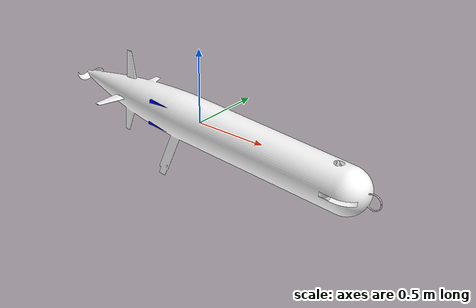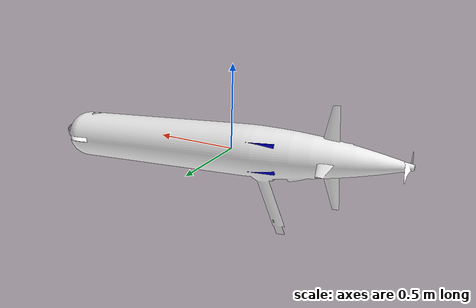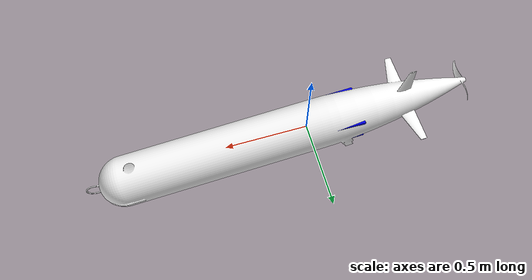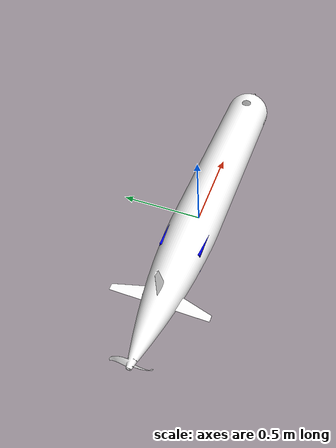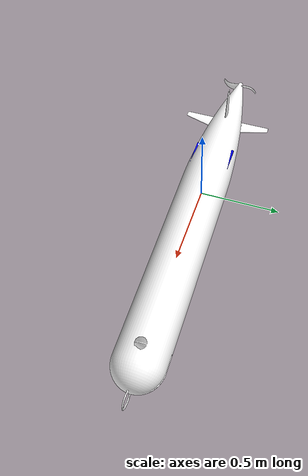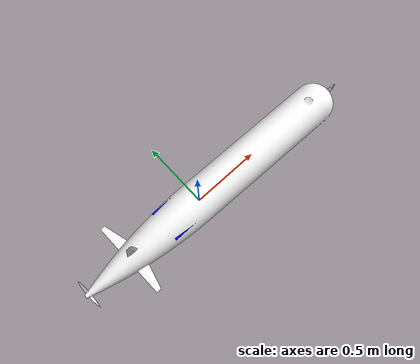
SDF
<?xml version="1.0" ?>
<!--
  Development of this module has been funded by the Monterey Bay Aquarium
  Research Institute (MBARI) and the David and Lucile Packard Foundation
-->
<sdf version="1.6">
  <world name="tilted_world">
    <gravity>0 0 -9.8</gravity>
    <scene>
      <!-- For turquoise ambient to match particle effect -->
      <ambient>0.0 1.0 1.0</ambient>
      <!-- For default gray ambient -->
      <background>0.0 0.7 0.8</background>
    </scene>

    <physics name="1ms" type="dart">
      <max_step_size>0.02</max_step_size>
      <real_time_factor>1</real_time_factor>
    </physics>
    <plugin
      filename="ignition-gazebo-physics-system"
      name="ignition::gazebo::systems::Physics">
    </plugin>
    <plugin
      filename="ignition-gazebo-user-commands-system"
      name="ignition::gazebo::systems::UserCommands">
    </plugin>
    <plugin
      filename="ignition-gazebo-scene-broadcaster-system"
      name="ignition::gazebo::systems::SceneBroadcaster">
    </plugin>

    <plugin
      filename="ignition-gazebo-buoyancy-system"
      name="ignition::gazebo::systems::Buoyancy">
      <!-- TODO: fix behaviour near surface, see https://github.com/osrf/lrauv/issues/102 -->
      <uniform_fluid_density>1025</uniform_fluid_density>
    </plugin>

    <include>
      <pose>0 0 0 0 0.08 0</pose>
      <uri>tethys</uri>
      <plugin
        filename="ignition-gazebo-detachable-joint-system"
        name="ignition::gazebo::systems::DetachableJoint">
        <parent_link>base_link</parent_link>
        <child_model>__model__</child_model>
        <child_link>drop_weight</child_link>
        <topic>/model/tethys/drop_weight</topic>
      </plugin>
      <plugin
        filename="ignition-gazebo-joint-position-controller-system"
        name="ignition::gazebo::systems::JointPositionController">
        <joint_name>battery_joint</joint_name>
        <use_velocity_commands>true</use_velocity_commands>
        <cmd_max>0.0007</cmd_max>
      </plugin>
    </include>

  </world>
</sdf>

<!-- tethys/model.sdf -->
<!--
  Development of this module has been funded by the Monterey Bay Aquarium
  Research Institute (MBARI) and the David and Lucile Packard Foundation
-->
<sdf version="1.6">
  <model name="tethys">
    <!-- Body -->
    <link name="base_link">
      <inertial>
        <!-- to offset battery CoM before getting real parameters for vehicle without battery -->
        <!-- 146.5671 subtracted by battery mass -->
        <mass>114.8364</mass>
        <!-- TODO: Get inertial matrix of base link WITHOUT battery -->
        <inertia>

          <!-- Guesstimated (decreased by 1/5) to account for battery -->
          <ixx>2.4</ixx>
          <ixy>0</ixy>
          <ixz>0.0004</ixz>
          <iyy>33.5841864</iyy>
          <iyz>0</iyz>
          <izz>33.5841864</izz>

        </inertia>
      </inertial>

      <collision name="main_body_buoyancy">
        <pose>0 0 0.007 0 0 0</pose>
        <geometry>
          <box>
            <size>2 0.3 0.245945166667</size>
          </box>
        </geometry>
      </collision>

      <visual name="visual">
        <geometry>
          <mesh>
            <uri>meshes/tethys.dae</uri>
            <submesh>
              <name>Body</name>
              <center>false</center>
            </submesh>
          </mesh>
        </geometry>
        <material>
          <diffuse>1.0 1.0 1.0 1.0</diffuse>
          <specular>1.0 1.0 1.0 1.0</specular>
          <pbr>
            <metal>
              <albedo_map>materials/textures/Tethys_Albedo.png</albedo_map>
              <normal_map>materials/textures/Tethys_Normal.png</normal_map>
              <metalness_map>materials/textures/Tethys_Metalness.png</metalness_map>
              <roughness_map>materials/textures/Tethys_Roughness.png</roughness_map>
            </metal>
          </pbr>
          <script>
            <uri>materials/scripts/</uri>
            <uri>materials/textures/</uri>
            <name>tethys/Tethys_Diffuse</name>
          </script>
        </material>
      </visual>
    </link>

    <!-- Horizontal fins -->
    <link name="horizontal_fins">
      <pose>1.05 0 0 0 0 0</pose>
      <inertial>
        <pose>0 0 0 1.57 0 0.5</pose>
        <mass>0.2</mass>
        <inertia>
          <ixx>0.0007924568755</ixx>
          <ixy>-0.0000000002674</ixy>
          <ixz>0.0003978158176</ixz>
          <iyy>0.0010546736475</iyy>
          <iyz>-0.0000000006729</iyz>
          <izz>0.0002633558262</izz>
        </inertia>
      </inertial>

      <collision name="collision">
        <geometry>
          <box>
            <size>0.1 0.1 0.02</size>
          </box>
        </geometry>
      </collision>

      <visual name= "visual">
        <pose>-1.05 0 0 0 0 0</pose>
        <geometry>
          <mesh>
            <uri>meshes/tethys.dae</uri>
            <submesh>
              <name>Fins_Horizontal</name>
              <center>false</center>
            </submesh>
          </mesh>
        </geometry>
        <material>
          <diffuse>1.0 1.0 1.0</diffuse>
          <specular>1.0 1.0 1.0</specular>
          <pbr>
            <metal>
              <albedo_map>materials/textures/Tethys_Albedo.png</albedo_map>
              <normal_map>materials/textures/Tethys_Normal.png</normal_map>
              <metalness_map>materials/textures/Tethys_Metalness.png</metalness_map>
              <roughness_map>materials/textures/Tethys_Roughness.png</roughness_map>
            </metal>
          </pbr>
          <script>
            <uri>materials/scripts/</uri>
            <uri>materials/textures/</uri>
            <name>tethys/Tethys_Diffuse</name>
          </script>
        </material>
      </visual>
    </link>

    <!-- Vertical fins -->
    <link name="vertical_fins">
      <pose>1.05 0 0 0 0 0</pose>
      <inertial>
        <mass>0.2</mass>
        <inertia>
          <ixx>0.0007924568755</ixx>
          <ixy>-0.0000000002674</ixy>
          <ixz>0.0003978158176</ixz>
          <iyy>0.0010546736475</iyy>
          <iyz>-0.0000000006729</iyz>
          <izz>0.0002633558262</izz>
        </inertia>
      </inertial>

      <collision name="collision">
         <geometry>
          <box>
            <size>0.1 0.1 0.02</size>
          </box>
        </geometry>
      </collision>

      <visual name= "visual">
        <pose>-1.05 0 0 0 0 0</pose>
        <geometry>
          <mesh>
            <uri>meshes/tethys.dae</uri>
            <submesh>
              <name>Fins_vertical</name>
              <center>false</center>
            </submesh>
          </mesh>
        </geometry>
        <material>
          <diffuse>1.0 1.0 1.0</diffuse>
          <specular>1.0 1.0 1.0</specular>
          <pbr>
            <metal>
              <albedo_map>materials/textures/Tethys_Albedo.png</albedo_map>
              <normal_map>materials/textures/Tethys_Normal.png</normal_map>
              <metalness_map>materials/textures/Tethys_Metalness.png</metalness_map>
              <roughness_map>materials/textures/Tethys_Roughness.png</roughness_map>
            </metal>
          </pbr>
          <script>
            <uri>materials/scripts/</uri>
            <uri>materials/textures/</uri>
            <name>tethys/Tethys_Diffuse</name>
          </script>
        </material>
      </visual>
    </link>

    <!-- Propeller -->
    <link name="propeller">
      <pose>1.43162 0 0 0 0 0</pose>
      <inertial>
        <pose>0 0 0 1.570796 0 0</pose>
        <mass>0.09</mass>
        <inertia>
          <ixx>0.000143971303</ixx>
          <ixy>0.000000000008</ixy>
          <ixz>-0.000000000224</ixz>
          <iyy>0.000140915448</iyy>
          <iyz>-0.000025236433</iyz>
          <izz>0.000033571862</izz>
        </inertia>
      </inertial>

      <collision name="collision">
        <geometry>
          <box>
            <size>0.03 0.1 0.03</size>
          </box>
        </geometry>
      </collision>

      <visual name= "visual">
        <pose>-1.43162 0 0 0 0 0</pose>
        <geometry>
          <mesh>
            <uri>meshes/tethys.dae</uri>
            <submesh>
              <name>Prop</name>
              <center>false</center>
            </submesh>
          </mesh>
        </geometry>
        <material>
          <diffuse>1.0 1.0 1.0</diffuse>
          <specular>1.0 1.0 1.0</specular>
          <pbr>
            <metal>
              <albedo_map>materials/textures/Tethys_Albedo.png</albedo_map>
              <normal_map>materials/textures/Tethys_Normal.png</normal_map>
              <metalness_map>materials/textures/Tethys_Metalness.png</metalness_map>
              <roughness_map>materials/textures/Tethys_Roughness.png</roughness_map>
            </metal>
          </pbr>
          <script>
            <uri>materials/scripts/</uri>
            <uri>materials/textures/</uri>
            <name>tethys/Tethys_Diffuse</name>
          </script>
        </material>
      </visual>
    </link>

    <!-- Battery -->
    <!-- No separate collision for battery, because it is inside the vehicle.
         Additional collision requires buoyancy volume recalculation. -->
    <link name="battery">
      <!-- TODO: On hold till mesh center adjusted to aft dome, then it will be 0.563, 0, 0.024. -->
      <pose>0 0 0 0 0 0</pose>
      <inertial>
        <!-- Non-zero y creates roll. Not fun to tune without actual base link inertia minus battery-->
        <mass>31.7307</mass>
        <inertia>
          <ixx>0.2327</ixx>
          <ixy>0</ixy>
          <ixz>-0.0004</ixz>
          <iyy>1.0930</iyy>
          <iyz>0</iyz>
          <izz>1.0344</izz>
        </inertia>
      </inertial>

      <visual name= "visual">
        <geometry>
          <box>
            <!-- z is guesstimated from schematics. Visual doesn't matter. -->
            <size>0.6489446 0.24638 0.17415</size>
          </box>
        </geometry>
        <material>
          <diffuse>0.0 0.0 1.0 1.0</diffuse>
          <specular>0.0 0.0 1.0 1.0</specular>
        </material>
      </visual>
    </link>

    <link name="buoyancy_engine">
      <!-- TODO: Determine location of buoyancy engine -->
      <pose>0.4 0 0 0 0 0</pose>

      <inertial>
        <pose>0 0 0 0 0 0</pose>
        <mass>0.3</mass>
        <inertia>
          <ixx>0.000143971303</ixx>
          <ixy>0.000000000008</ixy>
          <ixz>-0.000000000224</ixz>
          <iyy>0.000140915448</iyy>
          <iyz>-0.000025236433</iyz>
          <izz>0.000033571862</izz>
        </inertia>
      </inertial>
      <collision name="collision">
        <geometry>
          <box>
            <size>0.03 0.1 0.1</size>
          </box>
        </geometry>
      </collision>
    </link>

    <!-- Joints -->
    <joint name="buoyancy_engine_joint" type="fixed">
      <pose>0 0 0 0 0 0</pose>
      <parent>base_link</parent>
      <child>buoyancy_engine</child>
      <namespace>tethys</namespace>
    </joint>
    <joint name="horizontal_fins_joint" type="revolute">
      <pose>0 0 0 0 0 0</pose>
      <parent>base_link</parent>
      <child>horizontal_fins</child>
      <axis>
        <xyz>0 1 0</xyz>
        <limit>
          <lower>-0.261799</lower>
          <upper>0.261799</upper>
          <effort>-1</effort>
          <velocity>-1</velocity>
        </limit>
      </axis>
    </joint>

    <joint name="vertical_fins_joint" type="revolute">
      <pose degrees="true">0 0 0   180 0 0</pose>
      <parent>base_link</parent>
      <child>vertical_fins</child>
      <axis>
        <xyz>0 0 1</xyz>
        <limit>
          <lower>-0.261799</lower>
          <upper>0.261799</upper>
          <effort>-1</effort>
          <velocity>-1</velocity>
        </limit>
      </axis>
    </joint>

    <joint name="propeller_joint" type="revolute">
      <pose degrees="true">0 0 0   0 180 0</pose>
      <parent>base_link</parent>
      <child>propeller</child>
      <axis>
        <xyz>1 0 0</xyz>
        <limit>
          <lower>-1e+12</lower>
          <upper>1e+12</upper>
          <effort>1e6</effort>
          <velocity>-1</velocity>
        </limit>
      </axis>
    </joint>

    <!-- positive joint values move mass forward -->
    <joint name="battery_joint" type="prismatic">
      <pose degrees="true">0 0 0   0 0 180</pose>
      <parent>base_link</parent>
      <child>battery</child>
      <axis>
        <xyz>1 0 0</xyz>
        <limit>
          <lower>-0.03</lower>
          <upper>0.03</upper>
          <effort>1e6</effort>
          <velocity>0.0007</velocity>
        </limit>
      </axis>
    </joint>

    <!-- Drop weight -->
    <link name="drop_weight">
      <pose>0 0 0 0 0 0</pose>
      <inertial>
        <pose>0 0 0 0 0 0</pose>
        <mass>1</mass>
        <inertia>
          <ixx>0.000143971303</ixx>
          <ixy>0.000000000008</ixy>
          <ixz>-0.000000000224</ixz>
          <iyy>0.000140915448</iyy>
          <iyz>-0.000025236433</iyz>
          <izz>0.000033571862</izz>
        </inertia>
      </inertial>
    </link>

  </model>
</sdf>
